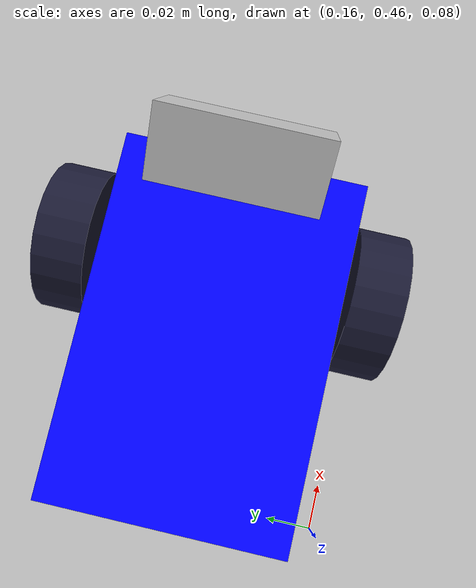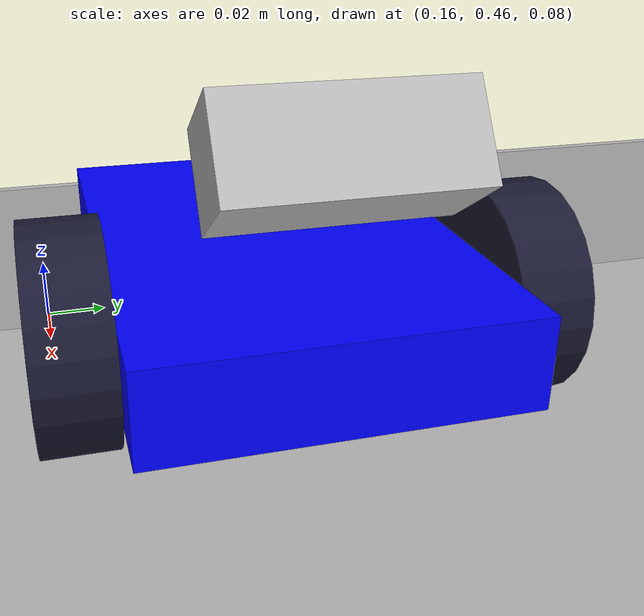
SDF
<?xml version="1.0" ?>
<sdf version="1.7">
    <world name="car_world">
        <physics name="1ms" type="ignored">
            <max_step_size>0.001</max_step_size>
            <real_time_factor>1.0</real_time_factor>
        </physics>
        <plugin
            filename="libignition-gazebo-physics-system.so"
            name="ignition::gazebo::systems::Physics">
        </plugin>
        <plugin
            filename="libignition-gazebo-user-commands-system.so"
            name="ignition::gazebo::systems::UserCommands">
        </plugin>
        <plugin
            filename="libignition-gazebo-scene-broadcaster-system.so"
            name="ignition::gazebo::systems::SceneBroadcaster">
        </plugin>

        <gui fullscreen="0">

            <!-- 3D scene -->
            <plugin filename="GzScene3D" name="3D View">
                <ignition-gui>
                <title>3D View</title>
                <property type="bool" key="showTitleBar">false</property>
                <property type="string" key="state">docked</property>
                </ignition-gui>

                <engine>ogre2</engine>
                <scene>scene</scene>
                <ambient_light>0.4 0.4 0.4</ambient_light>
                <background_color>0.8 0.8 0.8</background_color>
            </plugin>

            <!-- World control -->
            <plugin filename="WorldControl" name="World control">
                <ignition-gui>
                <title>World control</title>
                <property type="bool" key="showTitleBar">false</property>
                <property type="bool" key="resizable">false</property>
                <property type="double" key="height">72</property>
                <property type="double" key="width">121</property>
                <property type="double" key="z">1</property>

                <property type="string" key="state">floating</property>
                <anchors target="3D View">
                    <line own="left" target="left"/>
                    <line own="bottom" target="bottom"/>
                </anchors>
                </ignition-gui>

                <play_pause>true</play_pause>
                <step>true</step>
                <start_paused>true</start_paused>
                <service>/world/car_world/control</service>
                <stats_topic>/world/car_world/stats</stats_topic>
            </plugin>

            <!-- World statistics -->
            <plugin filename="WorldStats" name="World stats">
                <ignition-gui>
                <title>World stats</title>
                <property type="bool" key="showTitleBar">false</property>
                <property type="bool" key="resizable">false</property>
                <property type="double" key="height">110</property>
                <property type="double" key="width">290</property>
                <property type="double" key="z">1</property>

                <property type="string" key="state">floating</property>
                <anchors target="3D View">
                    <line own="right" target="right"/>
                    <line own="bottom" target="bottom"/>
                </anchors>
                </ignition-gui>

                <sim_time>true</sim_time>
                <real_time>true</real_time>
                <real_time_factor>true</real_time_factor>
                <iterations>true</iterations>
                <topic>/world/car_world/stats</topic>

            </plugin>

            <!-- Entity tree -->
            <plugin filename="EntityTree" name="Entity tree">
            </plugin>

            <plugin filename="ImageDisplay" name="Image Display">
                <ignition-gui>
                <property key="state" type="string">docked</property>
                </ignition-gui>
            </plugin>

        </gui>

        <light type="directional" name="sun">
            <cast_shadows>true</cast_shadows>
            <pose>0 0 10 0 0 0</pose>
            <diffuse>0.8 0.8 0.8 1</diffuse>
            <specular>0.2 0.2 0.2 1</specular>
            <attenuation>
                <range>1000</range>
                <constant>0.9</constant>
                <linear>0.01</linear>
                <quadratic>0.001</quadratic>
            </attenuation>
            <direction>-0.5 0.1 -0.9</direction>
        </light>

        <model name="ground_plane">
            <static>true</static>
            <link name="link">
                <collision name="collision">
                <geometry>
                    <plane>
                    <normal>0 0 1</normal>
                    </plane>
                </geometry>
                </collision>
                <visual name="visual">
                <geometry>
                    <plane>
                    <normal>0 0 1</normal>
                    <size>100 100</size>
                    </plane>
                </geometry>
                </visual>
            </link>
        </model>
        <!--Custom models-->
        <include>
            <uri>model://argus_v2</uri>
        </include>
        <include>
            <uri>model://robolympics_circuit</uri>
        </include>
    </world>
</sdf>

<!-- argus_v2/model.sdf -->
<sdf version="1.7">
    <model name='argus_v2' canonical_link='chassis'>
        <pose relative_to='world'>0.23 0.525 0 0 0 0</pose>
        <link name='chassis'>
            <pose relative_to='__model__'>0 0 0.12 0 0 0</pose>
            <inertial> <!--inertial properties of the link mass, inertia matix-->
                <mass>0.3</mass>
                <inertia>
                    <ixx>0.00025</ixx>
                    <ixy>0</ixy>
                    <ixz>0</ixz>
                    <iyy>0.000562</iyy>
                    <iyz>0</iyz>
                    <izz>0.000812</izz>
                </inertia>
            </inertial>
            <visual name='visual'>
                <geometry>
                    <box>
                        <size>0.15 0.1 0.025</size>
                    </box>
                </geometry>
                <!--let's add color to our link-->
                <material>
                    <ambient>0.0 0.0 1.0 1</ambient>
                    <diffuse>0.0 0.0 1.0 1</diffuse>
                    <specular>0.0 0.0 1.0 1</specular>
                </material>
            </visual>
            <collision name='collision'>
                <geometry>
                    <box>
                        <size>0.15 0.1 0.025</size>
                    </box>
                </geometry>
            </collision>
        </link>
        <link name='left_wheel'>
            <pose relative_to="chassis">0.03 0.06 0 -1.5707 0 0</pose>
            <inertial>
                <mass>0.05</mass>
                <inertia>
                    <ixx>0.000033</ixx>
                    <ixy>0</ixy>
                    <ixz>0</ixz>
                    <iyy>0.000033</iyy>
                    <iyz>0</iyz>
                    <izz>0.000062</izz>
                </inertia>
            </inertial>
            <visual name='visual'>
                <geometry>
                    <cylinder>
                        <radius>0.03</radius>
                        <length>0.02</length>
                    </cylinder>
                </geometry>
                <material> <!-- Wheel material -->
                    <ambient>0.1 0.1 0.1 1</ambient>
                    <diffuse>0.1 0.1 0.2 1</diffuse>
                    <specular>0 0 0 0</specular>
                    <emissive>0 0 0 1</emissive>
                </material> <!-- End wheel material -->
            </visual>
            <collision name='collision'>
                <geometry>
                    <cylinder>
                        <radius>0.03</radius>
                        <length>0.02</length>
                    </cylinder>
                </geometry>
            </collision>
        </link>
        <!--The same as left wheel but with different position-->
        <link name='right_wheel'>
            <pose relative_to="chassis">0.03 -0.06 0 -1.5707 0 0</pose> <!--angles are in radian-->
            <inertial>
                <mass>0.05</mass>
                <inertia>
                    <ixx>0.000033</ixx>
                    <ixy>0</ixy>
                    <ixz>0</ixz>
                    <iyy>0.000033</iyy>
                    <iyz>0</iyz>
                    <izz>0.000062</izz>
                </inertia>
            </inertial>
            <visual name='visual'>
                <geometry>
                    <cylinder>
                        <radius>0.03</radius>
                        <length>0.02</length>
                    </cylinder>
                </geometry>
                <material> <!-- Wheel material -->
                    <ambient>0.1 0.1 0.1 1</ambient>
                    <diffuse>0.1 0.1 0.2 1</diffuse>
                    <specular>0 0 0 0</specular>
                    <emissive>0 0 0 1</emissive>
                </material> <!-- End wheel material -->
            </visual>
            <collision name='collision'>
                <geometry>
                    <cylinder>
                        <radius>0.03</radius>
                        <length>0.02</length>
                    </cylinder>
                </geometry>
            </collision>
        </link>
        <!--caster wheel-->
        <frame name="caster_frame" attached_to='chassis'>
            <pose>-0.045 0 -0.01 0 0 0</pose>
        </frame>

        <link name='caster'>
            <pose relative_to='caster_frame'/>
            <inertial>
                <mass>0.02</mass>
                <inertia>
                    <ixx>0.00016</ixx>
                    <ixy>0</ixy>
                    <ixz>0</ixz>
                    <iyy>0.00016</iyy>
                    <iyz>0</iyz>
                    <izz>0.00016</izz>
                </inertia>
            </inertial>
            <visual name='visual'>
                <geometry>
                    <sphere>
                        <radius>0.02</radius>
                    </sphere>
                </geometry>
                <material>
                    <ambient>0.0 1 0.0 1</ambient>
                    <diffuse>0.0 1 0.0 1 1</diffuse>
                    <specular>0.0 1 0.0 1</specular>
                </material>
            </visual>
            <collision name='collision'>
                <geometry>
                    <sphere>
                        <radius>0.02</radius>
                    </sphere>
                </geometry>
            </collision>
        </link>
        <!--Camera-->
        <frame name="camera_frame" attached_to='chassis'>
            <pose>0.06 0 0.05 0 0 0</pose>
        </frame>
        <link name="camera">
            <pose relative_to="camera_frame">0 0 0 0 1.0 0</pose> <!--angles are in radian-->
            <inertial>
                <mass>0.05</mass>
                <inertia>
                    <ixx>0.0000166667</ixx>
                    <iyy>0.0000166667</iyy>
                    <izz>0.0000166667</izz>
                </inertia>
            </inertial>
            <collision name="collision">
                <geometry>
                    <box>
                        <size>0.025 0.06 0.025</size>
                    </box>
                </geometry>
            </collision>
            <visual name="visual">
                <geometry>
                    <box>
                        <size>0.025 0.06 0.025</size>
                    </box>
                </geometry>
            </visual>
            <sensor name="camera" type="camera">
                <update_rate>15</update_rate>
                <camera>
                    <horizontal_fov>1.919</horizontal_fov>
                    <image>
                        <width>640</width>
                        <height>480</height>
                    </image>
                    <clip>
                        <near>0.1</near>
                        <far>50</far>
                    </clip>
                </camera>
                <always_on>1</always_on>
                <update_rate>30</update_rate>
                <visualize>true</visualize>
                <topic>camera</topic>
            </sensor>
        </link>
        <!--adding joints-->
        <joint name='camera_joint' type='revolute'>
            <pose relative_to='camera_frame'/>
            <parent>chassis</parent>
            <child>camera</child>
            <axis>
                <xyz expressed_in='__model__'>0 1 0</xyz> <!--can be defined as any frame or even arbitrary frames-->
                <limit>
                    <lower>-1.5</lower>    <!--negative infinity-->
                    <upper>0.1</upper>     <!--positive infinity-->
                </limit>
            </axis>
        </joint>

        <joint name='left_wheel_joint' type='revolute'>
            <pose relative_to='left_wheel'/>
            <parent>chassis</parent>
            <child>left_wheel</child>
            <axis>
                <xyz expressed_in='__model__'>0 1 0</xyz> <!--can be defined as any frame or even arbitrary frames-->
                <limit>
                    <lower>-1.79769e+308</lower>    <!--negative infinity-->
                    <upper>1.79769e+308</upper>     <!--positive infinity-->
                </limit>
            </axis>
        </joint>
        <joint name='right_wheel_joint' type='revolute'>
            <pose relative_to='right_wheel'/>
            <parent>chassis</parent>
            <child>right_wheel</child>
            <axis>
                <xyz expressed_in='__model__'>0 1 0</xyz>
                <limit>
                    <lower>-1.79769e+308</lower>    <!--negative infinity-->
                    <upper>1.79769e+308</upper>     <!--positive infinity-->
                </limit>
            </axis>
        </joint>
        <joint name='caster_wheel' type='ball'>
            <parent>chassis</parent>
            <child>caster</child>
        </joint>
        <!--Adding plugins-->
        <plugin
            filename="ignition-gazebo-sensors-system"
            name="ignition::gazebo::systems::Sensors">
        </plugin>
        <plugin
            filename="libignition-gazebo-diff-drive-system.so"
            name="ignition::gazebo::systems::DiffDrive">
            <left_joint>left_wheel_joint</left_joint>
            <right_joint>right_wheel_joint</right_joint>
            <wheel_separation>0.11</wheel_separation>
            <wheel_radius>0.03</wheel_radius>
            <!-- output -->
            <topic>cmd_vel</topic>
            <odom_publish_frequency>1</odom_publish_frequency>
            <tf_topic>argus_v2/tf</tf_topic>
            <odom_topic>odometry</odom_topic>
        </plugin>
        <plugin
            filename="libignition-gazebo-joint-position-controller-system.so"
            name="ignition::gazebo::systems::JointPositionController">
            <topic>camera/cmd_pos</topic>
            <joint_name>camera_joint</joint_name>
            <cmd_max>3.14</cmd_max>
            <cmd_min>-3.14</cmd_min>
            <p_gain>0.01</p_gain>
            <i_gain>0.0001</i_gain>
            <d_gain>0.001</d_gain>
            <!-- output -->
        </plugin>
    </model>
</sdf>

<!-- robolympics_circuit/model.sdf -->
<sdf version='1.7'>
  <model name='robolympics_circuit'>
    <static>true</static>
    <pose relative_to='world'>0 0 0 0 0 0</pose>
    <link name='link'>
      <inertial>
        <mass>80</mass>
        <inertia>
          <ixx>0.166667</ixx>
          <ixy>0</ixy>
          <ixz>0</ixz>
          <iyy>0.166667</iyy>
          <iyz>0</iyz>
          <izz>0.166667</izz>
        </inertia>
      </inertial>
      <self_collide>1</self_collide>
      <visual name='visual'>
        <cast_shadows>0</cast_shadows>
        <geometry>
          <mesh>
            <scale>1.0 1.0 1.0</scale>
            <uri>model://robolympics_circuit/meshes/robolympics_config_0.dae</uri>
          </mesh>
        </geometry>
      </visual>
      <collision name='collision'>
        <geometry>
          <mesh>
            <scale>1.0 1.0 1.0</scale>
            <uri>model://robolympics_circuit/meshes/robolympics_config_0.dae</uri>
          </mesh>
        </geometry>
        <surface>
          <friction>
            <ode>
              <mu>1</mu>
              <mu2>1</mu2>
              <fdir1>0 0 0</fdir1>
              <slip1>0</slip1>
              <slip2>0</slip2>
            </ode>
            <torsional>
              <coefficient>1</coefficient>
              <patch_radius>0</patch_radius>
              <surface_radius>0</surface_radius>
              <use_patch_radius>1</use_patch_radius>
              <ode>
                <slip>0</slip>
              </ode>
            </torsional>
          </friction>
          <contact>
            <collide_without_contact>0</collide_without_contact>
            <collide_without_contact_bitmask>1</collide_without_contact_bitmask>
            <collide_bitmask>1</collide_bitmask>
            <ode>
              <soft_cfm>0</soft_cfm>
              <soft_erp>0.2</soft_erp>
              <kp>1e+13</kp>
              <kd>1</kd>
              <max_vel>0.01</max_vel>
              <min_depth>0</min_depth>
            </ode>
          </contact>
        </surface>
      </collision>
    </link>
  </model>
</sdf>
